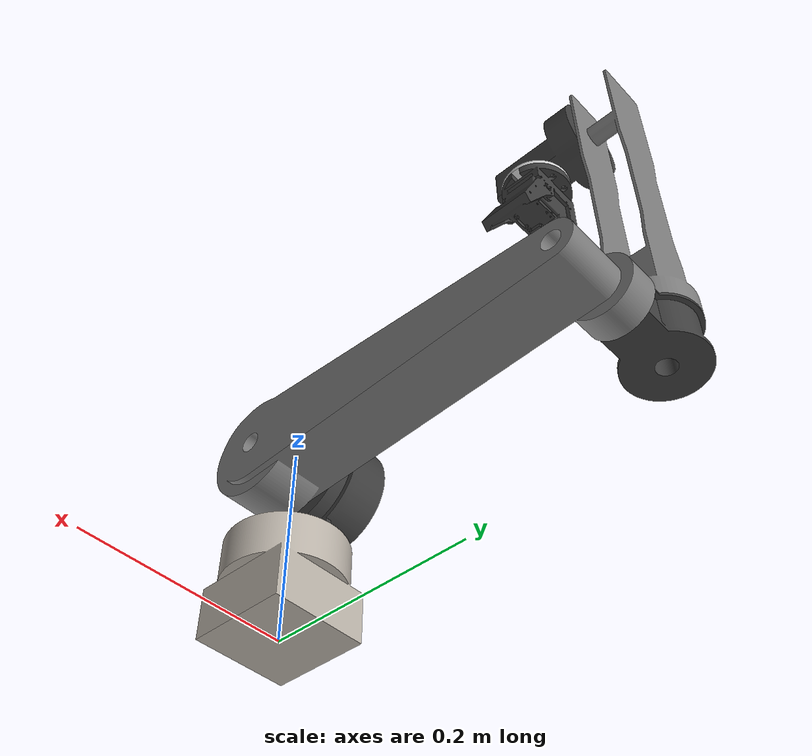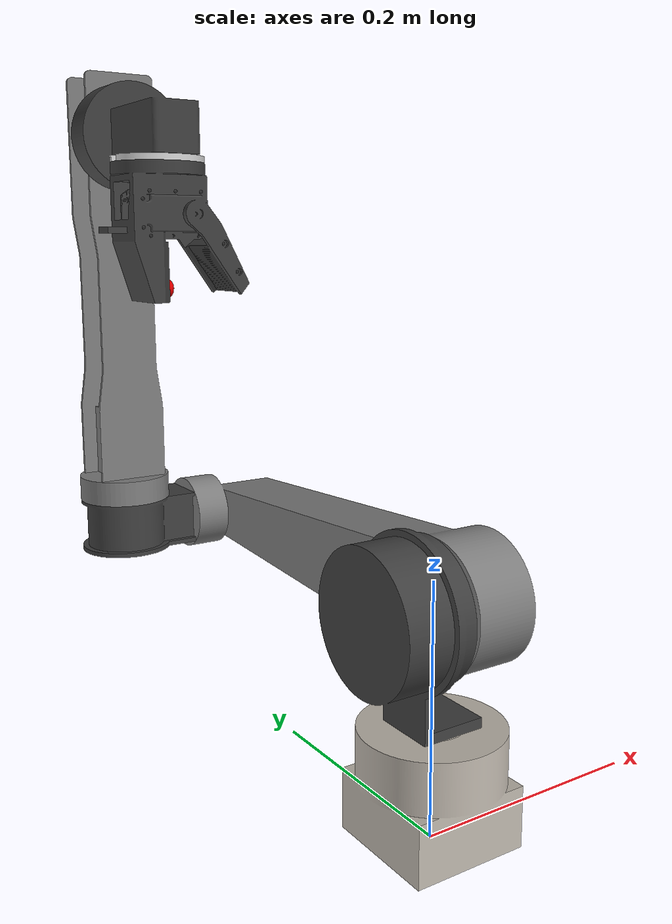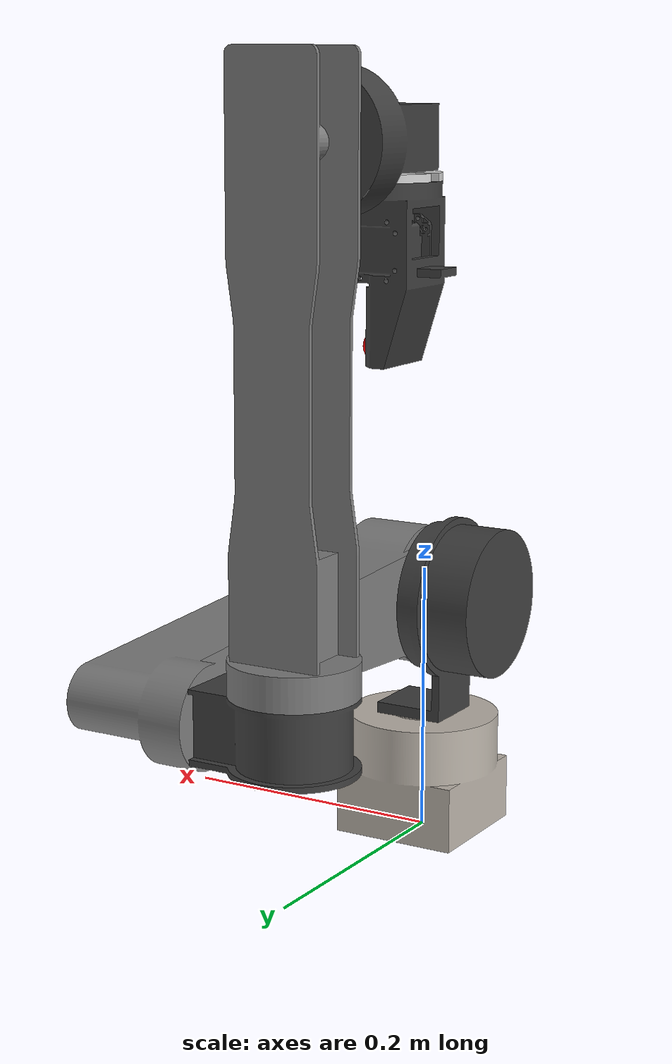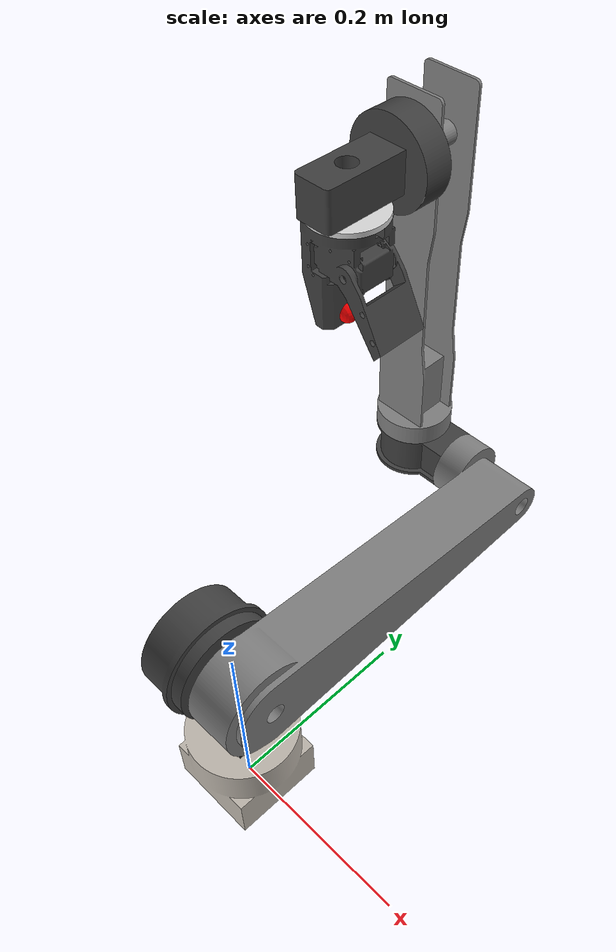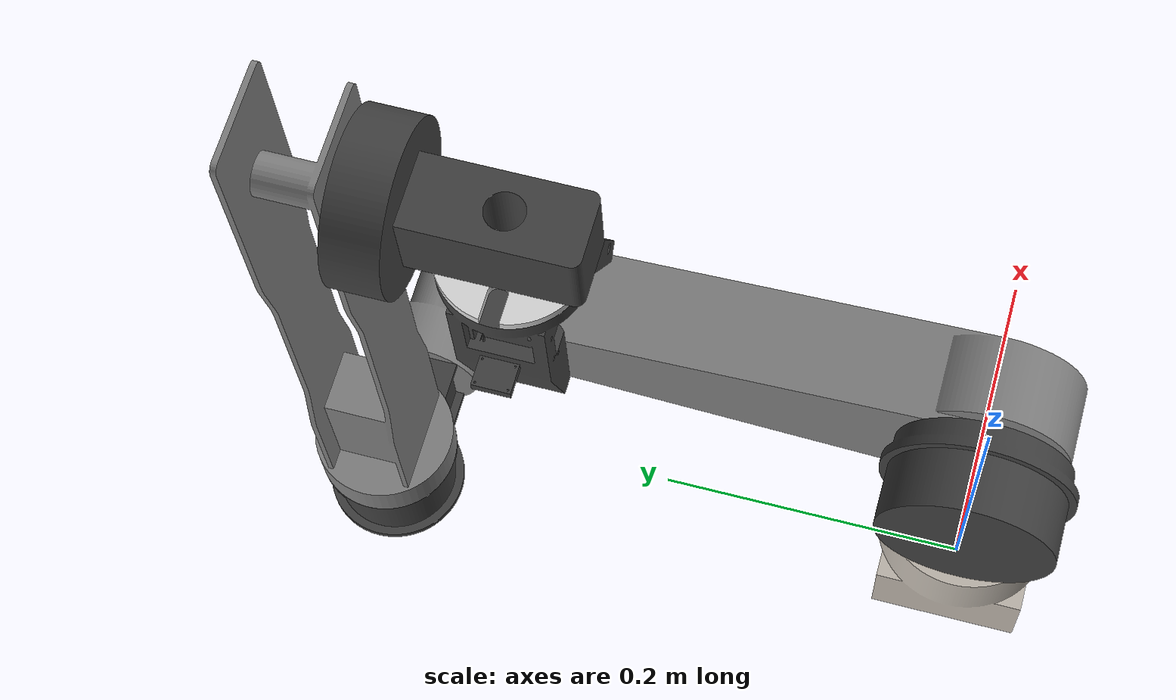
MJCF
<mujoco model="robot_arm">
  <compiler angle="radian" meshdir="assets" texturedir="assets"/>

  <option integrator="implicitfast"/>

  <default>
    <default class="brazito">
      <joint damping="1" frictionloss="1"/>
      <general biastype="affine" gainprm="1000" biasprm="0 -1000 -100" forcerange="-30 30"/>
      <default class="visual">
        <geom type="mesh" group="2" contype="0" conaffinity="0"/>
      </default>
      <default class="collision">
        <geom type="cylinder" group="3" mass="0" density="0"/>
      </default>
    </default>
  </default>

  <asset>
    <mesh file="base_link.obj"/>
    <mesh file="L1.obj"/>
    <mesh file="L2.obj"/>
    <mesh file="L3.obj"/>
    <mesh file="L4.obj"/>
    <mesh file="L5.obj"/>
    <mesh file="L6.obj"/>
    <mesh file="gripper.obj"/>

    <texture type="2d" name="base_link" file="base_link.png"/>
    <material name="dark" specular="0" shininess="0.5" rgba="0.25 0.25 0.25 1"/>
    <material name="claro" specular="0" shininess="0.5" rgba="0.85 0.85 0.85 1"/>
    <material name="tex_blanco" texture="base_link" specular="0" shininess="0.25"/>
  </asset>

  <worldbody>
    <body name="base_link" childclass="brazito">
      <inertial pos="-0.00334984 -0.00013615 0.0249584" quat="-0.00692194 0.682592 0.00133293 0.730766" mass="0.472475"
        diaginertia="0.000531375 0.000415207 0.000378658"/>
      <geom class="visual" mesh="base_link" material="tex_blanco"/>

      <!-- LINK1 -->
      <body name="link01" pos="0 0 0.0906">
        <inertial pos="2.47e-06 -0.00025198 0.0231717" quat="0.708578 0.705633 0.000281462 -0.000355927" mass="0.673326"
          diaginertia="0.00128328 0.000839362 0.000719308"/>
        <joint name="joint1" axis="0 0 1" range="-2.62 2.62"/>
        <geom class="visual" mesh="L1" material="dark"/>

        <!-- LINK 2 -->
        <body name="link02" pos="-0.0065 0 0.0902">
          <inertial pos="-0.110126 0.00240029 0.00158266" quat="0.00748058 0.707092 -0.0114473 0.70699" mass="1.19132"
            diaginertia="0.0246612 0.0243113 0.00100468"/>
          <joint name="joint2" axis="1 0 0" range="-0.7 4" damping="2"/>
          <geom class="visual" mesh="L2"/>
          <geom size="0.0325 0.051" quat="1 1 0 0" class="collision"/>
          <geom size="0.0225 0.1175" pos="-0.1625 0 0" quat="1 0 1 0" class="collision"/>
          <geom size="0.0325 0.0255" pos="-0.35 0 0" quat="1 1 0 0" class="collision"/>

          <!-- LINK 3 -->
          <body name="link03" pos="-0.03 0.3415 0 ">
            <inertial pos="0.106092 -0.00541815 0.0347638" quat="0.540557 0.443575 0.426319 0.573839" mass="0.839409"
              diaginertia="0.00954365 0.00938711 0.000558432"/>
            <joint name="joint3" axis="1 0 0" range="-2.62 2.62"/>
            <geom class="visual" mesh="L3" material="dark"/>
            <geom size="0.02 0.058" pos="0.128 0 0.055" quat="1 0 1 0" class="collision"/>
            <geom size="0.0325 0.0295" pos="0.2205 0 0.055" quat="0.5 -0.5 0.5 0.5" class="collision"/>

            <!-- LINK 4 -->
            <body name="link04" pos="-0.06 0 0.0238">
              <inertial pos="0.0436668 0.00364738 -0.00170192" quat="0.0390835 0.726445 -0.0526787 0.684087"
                mass="0.564046" diaginertia="0.000981656 0.00094053 0.000302655"/>
              <joint name="joint4" axis="0 0 1" range="-2.62 2.62"/>
              <geom class="visual" mesh="L4"/>
              <geom size="0.0325 0.0335" pos="0.072 0 0" class="collision"/>

              <!-- LINK 5 -->
              <body name="link05" pos="0 -0.024 0.321">
                <inertial pos="0.0312153 0 0.00646316" quat="0.462205 0.535209 0.53785 0.45895" mass="0.389385"
                  diaginertia="0.000558961 0.000547317 0.000167332"/>
                <joint name="joint5" axis="0 1 0" range="-2.62 2.62"/>
                <geom class="visual" mesh="L5" material="dark"/>

                <!-- LINK 6 -->
                <body name="link06" pos="0 -0.0755 -0.02" quat="0 1 0 0">
                  <inertial pos="0.0241569 -0.00017355 -0.00143876" quat="0.998779 0.0457735 -0.00663717 0.0173548"
                    mass="0.288758" diaginertia="0.00018333 0.000147464 0.000146786"/>
                  <joint name="joint6" axis="0 0 1" range="-2.62 2.62"/>
                  <geom class="visual" mesh="L6" material="claro"/>

                <!-- Gripper fixed-->
                <body name="gripper" pos="0 0 0.005">
                <geom class="visual" mesh="gripper" material="dark"/>
                <site name="attachment_site" size="0.01" pos="0 0 0.1" quat="-1 1 1 1" rgba="1 0 0 1" group="1"/>
                  </body>
                </body>
              </body>
            </body>
          </body>
        </body>
      </body>
    </body>
  </worldbody>

  <actuator>
    <general class="brazito" name="motor1" joint="joint1" ctrlrange="-2.62 2.62" forcerange="-15 15"/>
    <general class="brazito" name="motor2" joint="joint2" ctrlrange="-0.7 4" forcerange="-54 54" gainprm="1500"
      biasprm="0 -1500 -150"/>
    <general class="brazito" name="motor3" joint="joint3" ctrlrange="-2.62 2.62" forcerange="-24 24" />
    <general class="brazito" name="motor4" joint="joint4" ctrlrange="-2.62 2.62" forcerange="-4 4"/>
    <general class="brazito" name="motor5" joint="joint5" ctrlrange="-2.62 2.62" forcerange="-5 5"/>
    <general class="brazito" name="motor6" joint="joint6" ctrlrange="-2.62 2.62" forcerange="-4 4"/>
  </actuator>

  <keyframe>
    <key name="home" qpos="0 1.58 1.07 1.62 -2.04 0" ctrl="0 1.58 1.07 1.62 -2.04 0"/>
    <key name="up" qpos="0 0 0 0 0 0" ctrl="0 0 0 0 0 0"/>
    <key name = "pick" qpos="0.4978 2.35961 -0.0242714 1.61975 2.62017 2.55423e-06"  ctrl="0.4978 2.355 -0.0262 1.62 2.62 0"/>
  </keyframe>
</mujoco>
